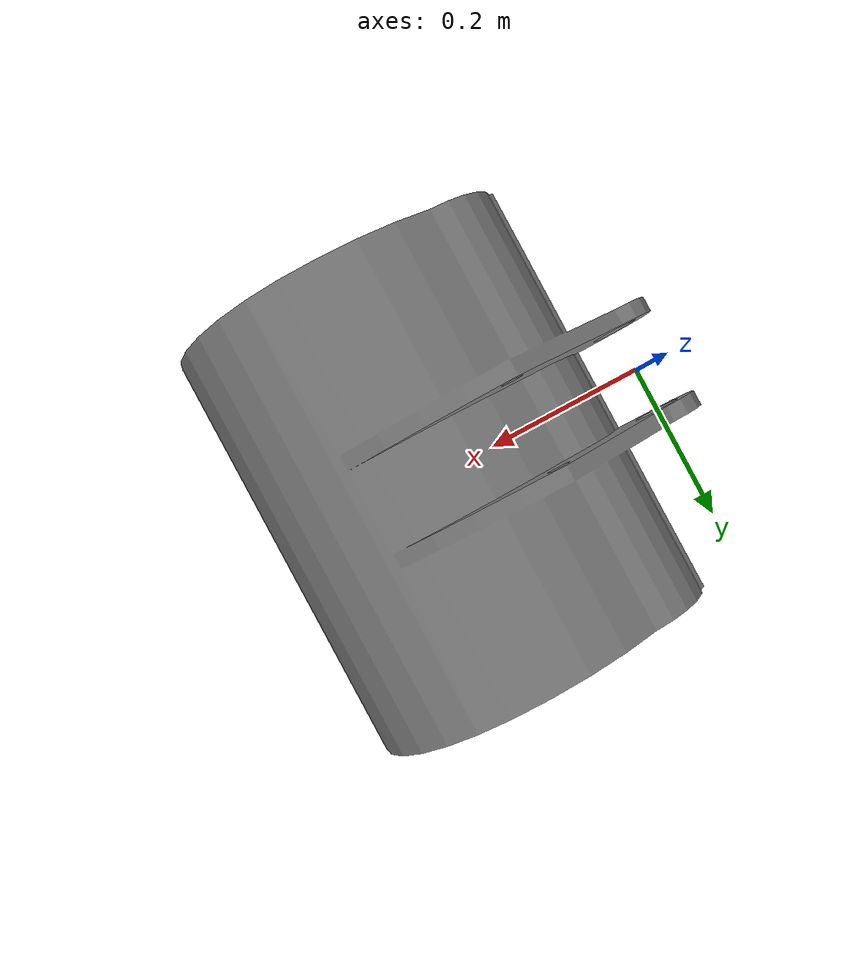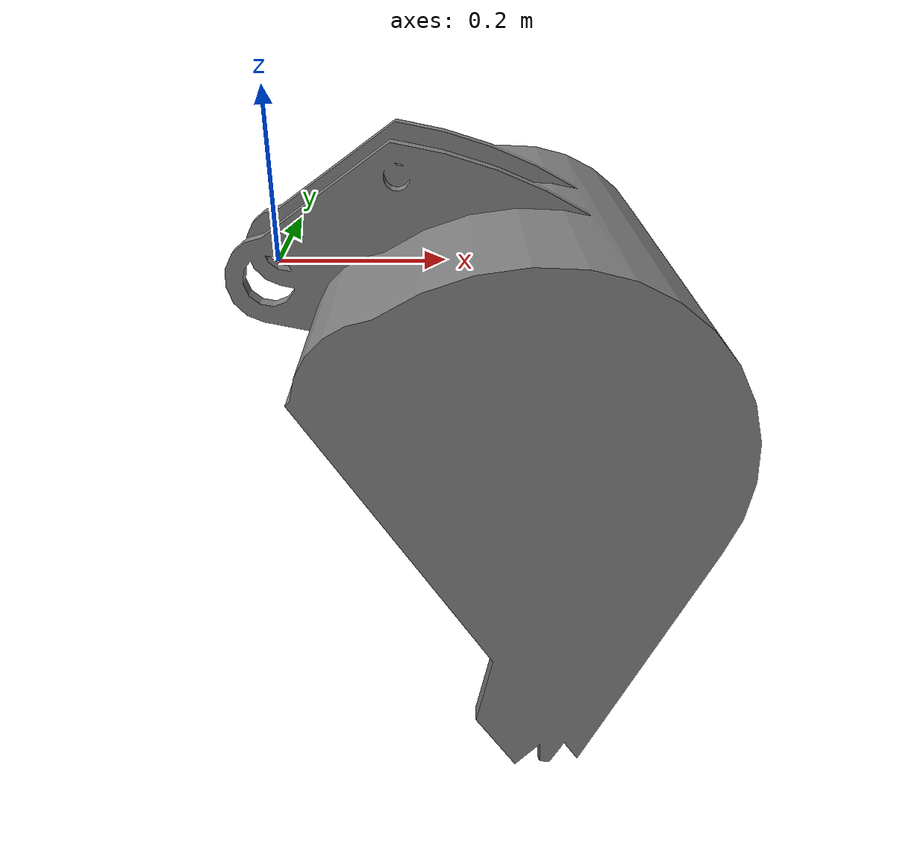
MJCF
<mujoco model="bucket">
  <default>
    <default class="visual">
      <geom group="2" type="mesh" contype="0" conaffinity="0"/>
    </default>
    <default class="collision">
      <geom group="3" type="mesh"/>
    </default>
  </default>
  <asset>
    <mesh file="bucket.obj"/>
    <mesh file="bucket_collision_0.obj"/>
    <mesh file="bucket_collision_1.obj"/>
    <mesh file="bucket_collision_2.obj"/>
    <mesh file="bucket_collision_3.obj"/>
    <mesh file="bucket_collision_4.obj"/>
    <mesh file="bucket_collision_5.obj"/>
    <mesh file="bucket_collision_6.obj"/>
    <mesh file="bucket_collision_7.obj"/>
    <mesh file="bucket_collision_8.obj"/>
    <mesh file="bucket_collision_9.obj"/>
  </asset>
  <worldbody>
    <body name="bucket">
      <geom mesh="bucket" class="visual"/>
      <geom mesh="bucket_collision_0" rgba="0.9883833413344946 0.7324760285346823 0.8225100423612204 1" class="collision"/>
      <geom mesh="bucket_collision_1" rgba="0.469744822814668 0.6771043808967685 0.9601620006937586 1" class="collision"/>
      <geom mesh="bucket_collision_2" rgba="0.6505830477412035 0.0844495067229446 0.2534466438255757 1" class="collision"/>
      <geom mesh="bucket_collision_3" rgba="0.4798370018131669 0.500947967533492 0.5107464613057571 1" class="collision"/>
      <geom mesh="bucket_collision_4" rgba="0.7057545137953224 0.017322426701952942 0.6508942886024297 1" class="collision"/>
      <geom mesh="bucket_collision_5" rgba="0.8756571060567075 0.5220404655774245 0.8763972327880879 1" class="collision"/>
      <geom mesh="bucket_collision_6" rgba="0.7363804167793061 0.10783675812356741 0.47574766982057104 1" class="collision"/>
      <geom mesh="bucket_collision_7" rgba="0.7983645477334317 0.7607894026798553 0.9109017917939453 1" class="collision"/>
      <geom mesh="bucket_collision_8" rgba="0.5708876840812068 0.2862078523717222 0.7094102644736814 1" class="collision"/>
      <geom mesh="bucket_collision_9" rgba="0.9712561059855046 0.9477134645716383 0.5424044264821968 1" class="collision"/>
    </body>
  </worldbody>
</mujoco>
